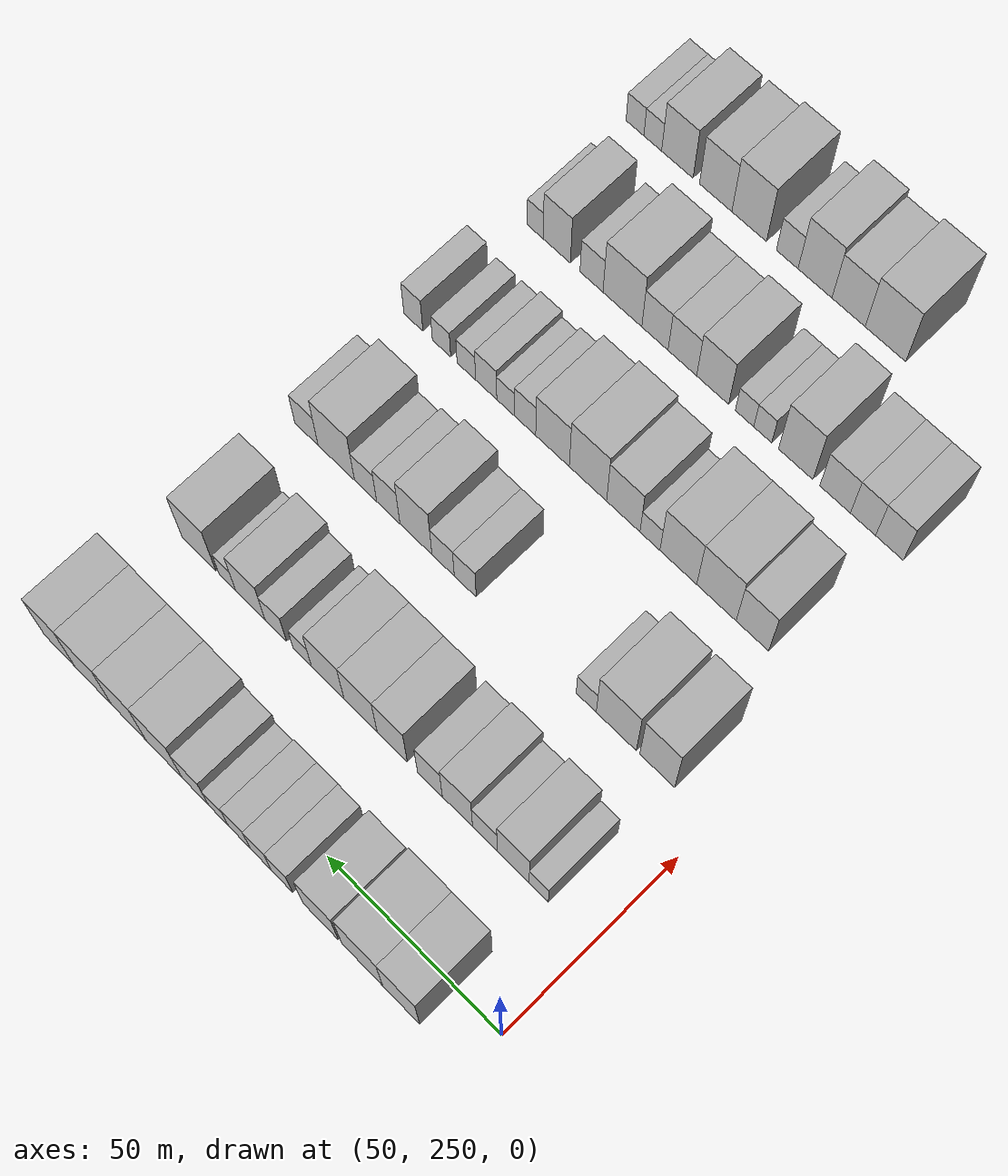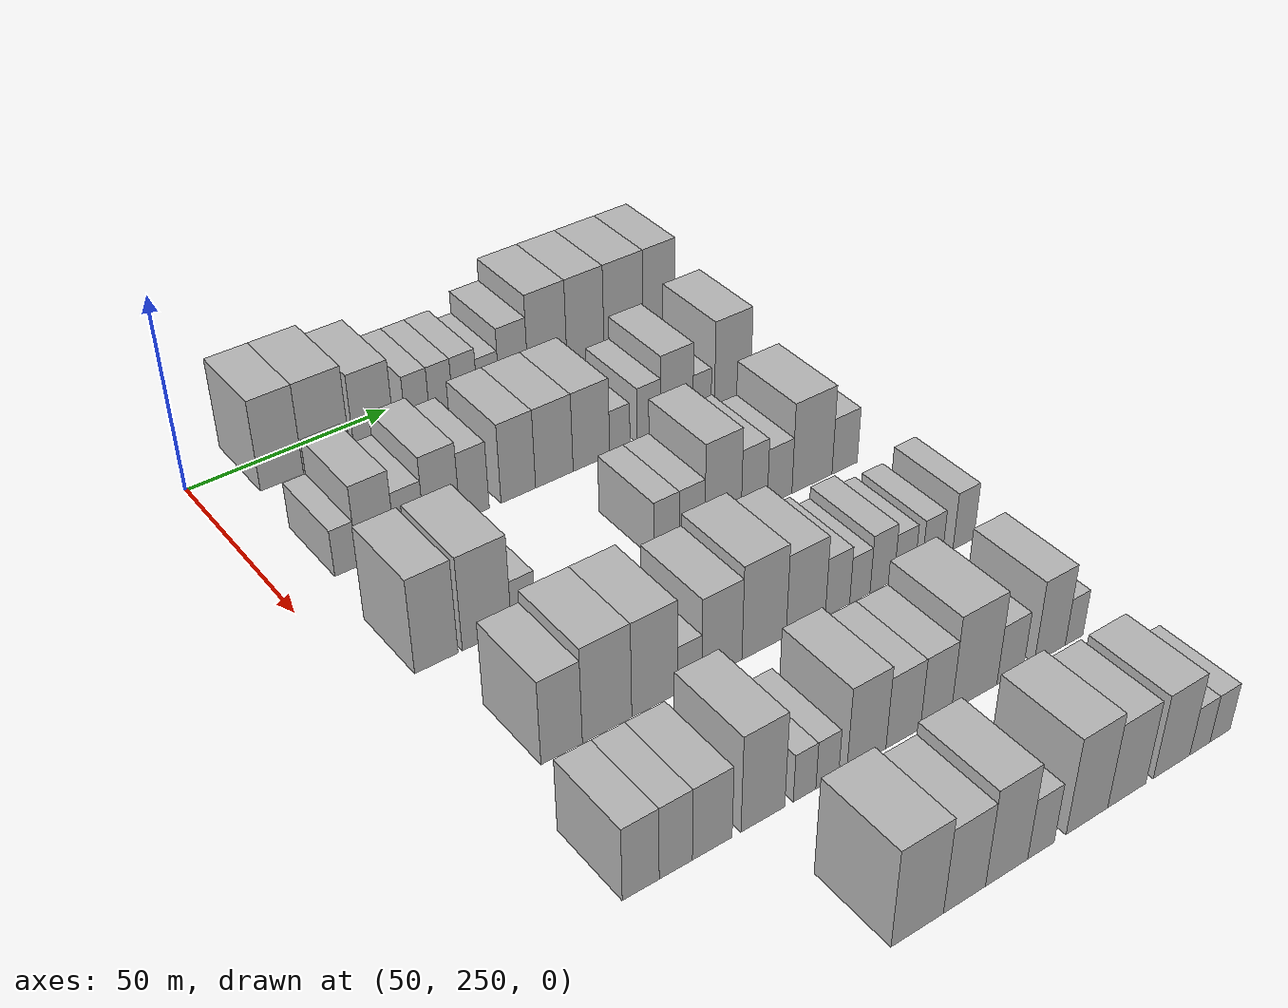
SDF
<sdf version="1.6">
 <world name="default">
  <model name="building_94">
   <static>1</static>
   <pose>50.0000 268.1801 0 0.000000 0.000000 0.000000</pose>
   <link name="link">
    <pose>0 0 12.00 0 0 0</pose>
    <collision name="collision"><geometry><box><size>20.0000 10.5638 24.0000</size></box></geometry></collision>
    <visual name="visual">
     <cast_shadows>0</cast_shadows>
     <geometry><box><size>20.0000 10.5638 24.0000</size></box></geometry>
     <material>
      <script>
       <uri>model://HANNAS_wall/materials/scripts</uri>
       <uri>model://HANNAS_wall/materials/textures</uri>
       <name>vrc/HANNAS_wall</name>
      </script>
     </material>
    </visual>
   </link>
  </model>
  <model name="building_95">
   <static>1</static>
   <pose>50.0000 279.3951 0 0.000000 0.000000 0.000000</pose>
   <link name="link">
    <pose>0 0 12.00 0 0 0</pose>
    <collision name="collision"><geometry><box><size>20.0000 11.8662 24.0000</size></box></geometry></collision>
    <visual name="visual">
     <cast_shadows>0</cast_shadows>
     <geometry><box><size>20.0000 11.8662 24.0000</size></box></geometry>
     <material>
      <script>
       <uri>model://HANNAS_wall/materials/scripts</uri>
       <uri>model://HANNAS_wall/materials/textures</uri>
       <name>vrc/HANNAS_wall</name>
      </script>
     </material>
    </visual>
   </link>
  </model>
  <model name="building_96">
   <static>1</static>
   <pose>50.0000 291.5180 0 0.000000 0.000000 0.000000</pose>
   <link name="link">
    <pose>0 0 10.50 0 0 0</pose>
    <collision name="collision"><geometry><box><size>20.0000 10.3795 21.0000</size></box></geometry></collision>
    <visual name="visual">
     <cast_shadows>0</cast_shadows>
     <geometry><box><size>20.0000 10.3795 21.0000</size></box></geometry>
     <material>
      <script>
       <uri>model://HANNAS_wall/materials/scripts</uri>
       <uri>model://HANNAS_wall/materials/textures</uri>
       <name>vrc/HANNAS_wall</name>
      </script>
     </material>
    </visual>
   </link>
  </model>
  <model name="building_97">
   <static>1</static>
   <pose>50.0000 302.8857 0 0.000000 0.000000 0.000000</pose>
   <link name="link">
    <pose>0 0 7.50 0 0 0</pose>
    <collision name="collision"><geometry><box><size>20.0000 6.3560 15.0000</size></box></geometry></collision>
    <visual name="visual">
     <cast_shadows>0</cast_shadows>
     <geometry><box><size>20.0000 6.3560 15.0000</size></box></geometry>
     <material>
      <script>
       <uri>model://HANNAS_wall/materials/scripts</uri>
       <uri>model://HANNAS_wall/materials/textures</uri>
       <name>vrc/HANNAS_wall</name>
      </script>
     </material>
    </visual>
   </link>
  </model>
  <model name="building_98">
   <static>1</static>
   <pose>50.0000 309.1673 0 0.000000 0.000000 0.000000</pose>
   <link name="link">
    <pose>0 0 7.50 0 0 0</pose>
    <collision name="collision"><geometry><box><size>20.0000 6.2071 15.0000</size></box></geometry></collision>
    <visual name="visual">
     <cast_shadows>0</cast_shadows>
     <geometry><box><size>20.0000 6.2071 15.0000</size></box></geometry>
     <material>
      <script>
       <uri>model://HANNAS_wall/materials/scripts</uri>
       <uri>model://HANNAS_wall/materials/textures</uri>
       <name>vrc/HANNAS_wall</name>
      </script>
     </material>
    </visual>
   </link>
  </model>
  <model name="building_99">
   <static>1</static>
   <pose>50.0000 315.5713 0 0.000000 0.000000 0.000000</pose>
   <link name="link">
    <pose>0 0 7.50 0 0 0</pose>
    <collision name="collision"><geometry><box><size>20.0000 6.6010 15.0000</size></box></geometry></collision>
    <visual name="visual">
     <cast_shadows>0</cast_shadows>
     <geometry><box><size>20.0000 6.6010 15.0000</size></box></geometry>
     <material>
      <script>
       <uri>model://HANNAS_wall/materials/scripts</uri>
       <uri>model://HANNAS_wall/materials/textures</uri>
       <name>vrc/HANNAS_wall</name>
      </script>
     </material>
    </visual>
   </link>
  </model>
  <model name="building_100">
   <static>1</static>
   <pose>50.0000 321.8636 0 0.000000 0.000000 0.000000</pose>
   <link name="link">
    <pose>0 0 6.00 0 0 0</pose>
    <collision name="collision"><geometry><box><size>20.0000 5.9836 12.0000</size></box></geometry></collision>
    <visual name="visual">
     <cast_shadows>0</cast_shadows>
     <geometry><box><size>20.0000 5.9836 12.0000</size></box></geometry>
     <material>
      <script>
       <uri>model://HANNAS_wall/materials/scripts</uri>
       <uri>model://HANNAS_wall/materials/textures</uri>
       <name>vrc/HANNAS_wall</name>
      </script>
     </material>
    </visual>
   </link>
  </model>
  <model name="building_101">
   <static>1</static>
   <pose>50.0000 328.8891 0 0.000000 0.000000 0.000000</pose>
   <link name="link">
    <pose>0 0 9.00 0 0 0</pose>
    <collision name="collision"><geometry><box><size>20.0000 8.0675 18.0000</size></box></geometry></collision>
    <visual name="visual">
     <cast_shadows>0</cast_shadows>
     <geometry><box><size>20.0000 8.0675 18.0000</size></box></geometry>
     <material>
      <script>
       <uri>model://HANNAS_wall/materials/scripts</uri>
       <uri>model://HANNAS_wall/materials/textures</uri>
       <name>vrc/HANNAS_wall</name>
      </script>
     </material>
    </visual>
   </link>
  </model>
  <model name="building_102">
   <static>1</static>
   <pose>50.0000 338.4605 0 0.000000 0.000000 0.000000</pose>
   <link name="link">
    <pose>0 0 12.00 0 0 0</pose>
    <collision name="collision"><geometry><box><size>20.0000 11.0752 24.0000</size></box></geometry></collision>
    <visual name="visual">
     <cast_shadows>0</cast_shadows>
     <geometry><box><size>20.0000 11.0752 24.0000</size></box></geometry>
     <material>
      <script>
       <uri>model://HANNAS_wall/materials/scripts</uri>
       <uri>model://HANNAS_wall/materials/textures</uri>
       <name>vrc/HANNAS_wall</name>
      </script>
     </material>
    </visual>
   </link>
  </model>
  <model name="building_103">
   <static>1</static>
   <pose>50.0000 349.4074 0 0.000000 0.000000 0.000000</pose>
   <link name="link">
    <pose>0 0 12.00 0 0 0</pose>
    <collision name="collision"><geometry><box><size>20.0000 10.8186 24.0000</size></box></geometry></collision>
    <visual name="visual">
     <cast_shadows>0</cast_shadows>
     <geometry><box><size>20.0000 10.8186 24.0000</size></box></geometry>
     <material>
      <script>
       <uri>model://HANNAS_wall/materials/scripts</uri>
       <uri>model://HANNAS_wall/materials/textures</uri>
       <name>vrc/HANNAS_wall</name>
      </script>
     </material>
    </visual>
   </link>
  </model>
  <model name="building_104">
   <static>1</static>
   <pose>50.0000 360.6221 0 0.000000 0.000000 0.000000</pose>
   <link name="link">
    <pose>0 0 12.00 0 0 0</pose>
    <collision name="collision"><geometry><box><size>20.0000 11.6109 24.0000</size></box></geometry></collision>
    <visual name="visual">
     <cast_shadows>0</cast_shadows>
     <geometry><box><size>20.0000 11.6109 24.0000</size></box></geometry>
     <material>
      <script>
       <uri>model://HANNAS_wall/materials/scripts</uri>
       <uri>model://HANNAS_wall/materials/textures</uri>
       <name>vrc/HANNAS_wall</name>
      </script>
     </material>
    </visual>
   </link>
  </model>
  <model name="building_105">
   <static>1</static>
   <pose>50.0000 371.2698 0 0.000000 0.000000 0.000000</pose>
   <link name="link">
    <pose>0 0 12.00 0 0 0</pose>
    <collision name="collision"><geometry><box><size>20.0000 9.6844 24.0000</size></box></geometry></collision>
    <visual name="visual">
     <cast_shadows>0</cast_shadows>
     <geometry><box><size>20.0000 9.6844 24.0000</size></box></geometry>
     <material>
      <script>
       <uri>model://HANNAS_wall/materials/scripts</uri>
       <uri>model://HANNAS_wall/materials/textures</uri>
       <name>vrc/HANNAS_wall</name>
      </script>
     </material>
    </visual>
   </link>
  </model>
  <model name="building_229">
   <static>1</static>
   <pose>85.0000 264.8068 0 0.000000 0.000000 0.000000</pose>
   <link name="link">
    <pose>0 0 6.00 0 0 0</pose>
    <collision name="collision"><geometry><box><size>20.0000 5.4255 12.0000</size></box></geometry></collision>
    <visual name="visual">
     <cast_shadows>0</cast_shadows>
     <geometry><box><size>20.0000 5.4255 12.0000</size></box></geometry>
     <material>
      <script>
       <uri>model://HANNAS_wall/materials/scripts</uri>
       <uri>model://HANNAS_wall/materials/textures</uri>
       <name>vrc/HANNAS_wall</name>
      </script>
     </material>
    </visual>
   </link>
  </model>
  <model name="building_230">
   <static>1</static>
   <pose>85.0000 272.0578 0 0.000000 0.000000 0.000000</pose>
   <link name="link">
    <pose>0 0 10.50 0 0 0</pose>
    <collision name="collision"><geometry><box><size>20.0000 9.0766 21.0000</size></box></geometry></collision>
    <visual name="visual">
     <cast_shadows>0</cast_shadows>
     <geometry><box><size>20.0000 9.0766 21.0000</size></box></geometry>
     <material>
      <script>
       <uri>model://HANNAS_wall/materials/scripts</uri>
       <uri>model://HANNAS_wall/materials/textures</uri>
       <name>vrc/HANNAS_wall</name>
      </script>
     </material>
    </visual>
   </link>
  </model>
  <model name="building_231">
   <static>1</static>
   <pose>85.0000 280.1842 0 0.000000 0.000000 0.000000</pose>
   <link name="link">
    <pose>0 0 7.50 0 0 0</pose>
    <collision name="collision"><geometry><box><size>20.0000 7.1763 15.0000</size></box></geometry></collision>
    <visual name="visual">
     <cast_shadows>0</cast_shadows>
     <geometry><box><size>20.0000 7.1763 15.0000</size></box></geometry>
     <material>
      <script>
       <uri>model://HANNAS_wall/materials/scripts</uri>
       <uri>model://HANNAS_wall/materials/textures</uri>
       <name>vrc/HANNAS_wall</name>
      </script>
     </material>
    </visual>
   </link>
  </model>
  <model name="building_232">
   <static>1</static>
   <pose>85.0000 288.1798 0 0.000000 0.000000 0.000000</pose>
   <link name="link">
    <pose>0 0 10.50 0 0 0</pose>
    <collision name="collision"><geometry><box><size>20.0000 8.8149 21.0000</size></box></geometry></collision>
    <visual name="visual">
     <cast_shadows>0</cast_shadows>
     <geometry><box><size>20.0000 8.8149 21.0000</size></box></geometry>
     <material>
      <script>
       <uri>model://HANNAS_wall/materials/scripts</uri>
       <uri>model://HANNAS_wall/materials/textures</uri>
       <name>vrc/HANNAS_wall</name>
      </script>
     </material>
    </visual>
   </link>
  </model>
  <model name="building_233">
   <static>1</static>
   <pose>85.0000 296.2367 0 0.000000 0.000000 0.000000</pose>
   <link name="link">
    <pose>0 0 9.00 0 0 0</pose>
    <collision name="collision"><geometry><box><size>20.0000 7.2990 18.0000</size></box></geometry></collision>
    <visual name="visual">
     <cast_shadows>0</cast_shadows>
     <geometry><box><size>20.0000 7.2990 18.0000</size></box></geometry>
     <material>
      <script>
       <uri>model://HANNAS_wall/materials/scripts</uri>
       <uri>model://HANNAS_wall/materials/textures</uri>
       <name>vrc/HANNAS_wall</name>
      </script>
     </material>
    </visual>
   </link>
  </model>
  <model name="building_234">
   <static>1</static>
   <pose>85.0000 307.3786 0 0.000000 0.000000 0.000000</pose>
   <link name="link">
    <pose>0 0 10.50 0 0 0</pose>
    <collision name="collision"><geometry><box><size>20.0000 8.9848 21.0000</size></box></geometry></collision>
    <visual name="visual">
     <cast_shadows>0</cast_shadows>
     <geometry><box><size>20.0000 8.9848 21.0000</size></box></geometry>
     <material>
      <script>
       <uri>model://HANNAS_wall/materials/scripts</uri>
       <uri>model://HANNAS_wall/materials/textures</uri>
       <name>vrc/HANNAS_wall</name>
      </script>
     </material>
    </visual>
   </link>
  </model>
  <model name="building_235">
   <static>1</static>
   <pose>85.0000 316.8578 0 0.000000 0.000000 0.000000</pose>
   <link name="link">
    <pose>0 0 10.50 0 0 0</pose>
    <collision name="collision"><geometry><box><size>20.0000 9.9737 21.0000</size></box></geometry></collision>
    <visual name="visual">
     <cast_shadows>0</cast_shadows>
     <geometry><box><size>20.0000 9.9737 21.0000</size></box></geometry>
     <material>
      <script>
       <uri>model://HANNAS_wall/materials/scripts</uri>
       <uri>model://HANNAS_wall/materials/textures</uri>
       <name>vrc/HANNAS_wall</name>
      </script>
     </material>
    </visual>
   </link>
  </model>
  <model name="building_236">
   <static>1</static>
   <pose>85.0000 326.8072 0 0.000000 0.000000 0.000000</pose>
   <link name="link">
    <pose>0 0 10.50 0 0 0</pose>
    <collision name="collision"><geometry><box><size>20.0000 9.9249 21.0000</size></box></geometry></collision>
    <visual name="visual">
     <cast_shadows>0</cast_shadows>
     <geometry><box><size>20.0000 9.9249 21.0000</size></box></geometry>
     <material>
      <script>
       <uri>model://HANNAS_wall/materials/scripts</uri>
       <uri>model://HANNAS_wall/materials/textures</uri>
       <name>vrc/HANNAS_wall</name>
      </script>
     </material>
    </visual>
   </link>
  </model>
  <model name="building_237">
   <static>1</static>
   <pose>85.0000 334.5676 0 0.000000 0.000000 0.000000</pose>
   <link name="link">
    <pose>0 0 6.00 0 0 0</pose>
    <collision name="collision"><geometry><box><size>20.0000 5.5959 12.0000</size></box></geometry></collision>
    <visual name="visual">
     <cast_shadows>0</cast_shadows>
     <geometry><box><size>20.0000 5.5959 12.0000</size></box></geometry>
     <material>
      <script>
       <uri>model://HANNAS_wall/materials/scripts</uri>
       <uri>model://HANNAS_wall/materials/textures</uri>
       <name>vrc/HANNAS_wall</name>
      </script>
     </material>
    </visual>
   </link>
  </model>
  <model name="building_238">
   <static>1</static>
   <pose>85.0000 342.6664 0 0.000000 0.000000 0.000000</pose>
   <link name="link">
    <pose>0 0 7.50 0 0 0</pose>
    <collision name="collision"><geometry><box><size>20.0000 6.6018 15.0000</size></box></geometry></collision>
    <visual name="visual">
     <cast_shadows>0</cast_shadows>
     <geometry><box><size>20.0000 6.6018 15.0000</size></box></geometry>
     <material>
      <script>
       <uri>model://HANNAS_wall/materials/scripts</uri>
       <uri>model://HANNAS_wall/materials/textures</uri>
       <name>vrc/HANNAS_wall</name>
      </script>
     </material>
    </visual>
   </link>
  </model>
  <model name="building_239">
   <static>1</static>
   <pose>85.0000 350.5642 0 0.000000 0.000000 0.000000</pose>
   <link name="link">
    <pose>0 0 10.50 0 0 0</pose>
    <collision name="collision"><geometry><box><size>20.0000 9.1936 21.0000</size></box></geometry></collision>
    <visual name="visual">
     <cast_shadows>0</cast_shadows>
     <geometry><box><size>20.0000 9.1936 21.0000</size></box></geometry>
     <material>
      <script>
       <uri>model://HANNAS_wall/materials/scripts</uri>
       <uri>model://HANNAS_wall/materials/textures</uri>
       <name>vrc/HANNAS_wall</name>
      </script>
     </material>
    </visual>
   </link>
  </model>
  <model name="building_240">
   <static>1</static>
   <pose>85.0000 357.7751 0 0.000000 0.000000 0.000000</pose>
   <link name="link">
    <pose>0 0 6.00 0 0 0</pose>
    <collision name="collision"><geometry><box><size>20.0000 5.2282 12.0000</size></box></geometry></collision>
    <visual name="visual">
     <cast_shadows>0</cast_shadows>
     <geometry><box><size>20.0000 5.2282 12.0000</size></box></geometry>
     <material>
      <script>
       <uri>model://HANNAS_wall/materials/scripts</uri>
       <uri>model://HANNAS_wall/materials/textures</uri>
       <name>vrc/HANNAS_wall</name>
      </script>
     </material>
    </visual>
   </link>
  </model>
  <model name="building_241">
   <static>1</static>
   <pose>85.0000 366.7127 0 0.000000 0.000000 0.000000</pose>
   <link name="link">
    <pose>0 0 12.00 0 0 0</pose>
    <collision name="collision"><geometry><box><size>20.0000 10.6471 24.0000</size></box></geometry></collision>
    <visual name="visual">
     <cast_shadows>0</cast_shadows>
     <geometry><box><size>20.0000 10.6471 24.0000</size></box></geometry>
     <material>
      <script>
       <uri>model://HANNAS_wall/materials/scripts</uri>
       <uri>model://HANNAS_wall/materials/textures</uri>
       <name>vrc/HANNAS_wall</name>
      </script>
     </material>
    </visual>
   </link>
  </model>
  <model name="building_359">
   <static>1</static>
   <pose>120.0000 265.4351 0 0.000000 0.000000 0.000000</pose>
   <link name="link">
    <pose>0 0 12.00 0 0 0</pose>
    <collision name="collision"><geometry><box><size>20.0000 9.9154 24.0000</size></box></geometry></collision>
    <visual name="visual">
     <cast_shadows>0</cast_shadows>
     <geometry><box><size>20.0000 9.9154 24.0000</size></box></geometry>
     <material>
      <script>
       <uri>model://HANNAS_wall/materials/scripts</uri>
       <uri>model://HANNAS_wall/materials/textures</uri>
       <name>vrc/HANNAS_wall</name>
      </script>
     </material>
    </visual>
   </link>
  </model>
  <model name="building_360">
   <static>1</static>
   <pose>120.0000 277.1660 0 0.000000 0.000000 0.000000</pose>
   <link name="link">
    <pose>0 0 12.00 0 0 0</pose>
    <collision name="collision"><geometry><box><size>20.0000 11.5463 24.0000</size></box></geometry></collision>
    <visual name="visual">
     <cast_shadows>0</cast_shadows>
     <geometry><box><size>20.0000 11.5463 24.0000</size></box></geometry>
     <material>
      <script>
       <uri>model://HANNAS_wall/materials/scripts</uri>
       <uri>model://HANNAS_wall/materials/textures</uri>
       <name>vrc/HANNAS_wall</name>
      </script>
     </material>
    </visual>
   </link>
  </model>
  <model name="building_361">
   <static>1</static>
   <pose>120.0000 285.8465 0 0.000000 0.000000 0.000000</pose>
   <link name="link">
    <pose>0 0 6.00 0 0 0</pose>
    <collision name="collision"><geometry><box><size>20.0000 5.8147 12.0000</size></box></geometry></collision>
    <visual name="visual">
     <cast_shadows>0</cast_shadows>
     <geometry><box><size>20.0000 5.8147 12.0000</size></box></geometry>
     <material>
      <script>
       <uri>model://HANNAS_wall/materials/scripts</uri>
       <uri>model://HANNAS_wall/materials/textures</uri>
       <name>vrc/HANNAS_wall</name>
      </script>
     </material>
    </visual>
   </link>
  </model>
  <model name="building_362">
   <static>1</static>
   <pose>120.0000 321.6800 0 0.000000 0.000000 0.000000</pose>
   <link name="link">
    <pose>0 0 7.50 0 0 0</pose>
    <collision name="collision"><geometry><box><size>20.0000 6.6174 15.0000</size></box></geometry></collision>
    <visual name="visual">
     <cast_shadows>0</cast_shadows>
     <geometry><box><size>20.0000 6.6174 15.0000</size></box></geometry>
     <material>
      <script>
       <uri>model://HANNAS_wall/materials/scripts</uri>
       <uri>model://HANNAS_wall/materials/textures</uri>
       <name>vrc/HANNAS_wall</name>
      </script>
     </material>
    </visual>
   </link>
  </model>
  <model name="building_363">
   <static>1</static>
   <pose>120.0000 328.3863 0 0.000000 0.000000 0.000000</pose>
   <link name="link">
    <pose>0 0 7.50 0 0 0</pose>
    <collision name="collision"><geometry><box><size>20.0000 6.7952 15.0000</size></box></geometry></collision>
    <visual name="visual">
     <cast_shadows>0</cast_shadows>
     <geometry><box><size>20.0000 6.7952 15.0000</size></box></geometry>
     <material>
      <script>
       <uri>model://HANNAS_wall/materials/scripts</uri>
       <uri>model://HANNAS_wall/materials/textures</uri>
       <name>vrc/HANNAS_wall</name>
      </script>
     </material>
    </visual>
   </link>
  </model>
  <model name="building_364">
   <static>1</static>
   <pose>120.0000 336.6906 0 0.000000 0.000000 0.000000</pose>
   <link name="link">
    <pose>0 0 12.00 0 0 0</pose>
    <collision name="collision"><geometry><box><size>20.0000 9.8136 24.0000</size></box></geometry></collision>
    <visual name="visual">
     <cast_shadows>0</cast_shadows>
     <geometry><box><size>20.0000 9.8136 24.0000</size></box></geometry>
     <material>
      <script>
       <uri>model://HANNAS_wall/materials/scripts</uri>
       <uri>model://HANNAS_wall/materials/textures</uri>
       <name>vrc/HANNAS_wall</name>
      </script>
     </material>
    </visual>
   </link>
  </model>
  <model name="building_365">
   <static>1</static>
   <pose>120.0000 345.2010 0 0.000000 0.000000 0.000000</pose>
   <link name="link">
    <pose>0 0 9.00 0 0 0</pose>
    <collision name="collision"><geometry><box><size>20.0000 7.2072 18.0000</size></box></geometry></collision>
    <visual name="visual">
     <cast_shadows>0</cast_shadows>
     <geometry><box><size>20.0000 7.2072 18.0000</size></box></geometry>
     <material>
      <script>
       <uri>model://HANNAS_wall/materials/scripts</uri>
       <uri>model://HANNAS_wall/materials/textures</uri>
       <name>vrc/HANNAS_wall</name>
      </script>
     </material>
    </visual>
   </link>
  </model>
  <model name="building_366">
   <static>1</static>
   <pose>120.0000 352.2693 0 0.000000 0.000000 0.000000</pose>
   <link name="link">
    <pose>0 0 7.50 0 0 0</pose>
    <collision name="collision"><geometry><box><size>20.0000 6.9295 15.0000</size></box></geometry></collision>
    <visual name="visual">
     <cast_shadows>0</cast_shadows>
     <geometry><box><size>20.0000 6.9295 15.0000</size></box></geometry>
     <material>
      <script>
       <uri>model://HANNAS_wall/materials/scripts</uri>
       <uri>model://HANNAS_wall/materials/textures</uri>
       <name>vrc/HANNAS_wall</name>
      </script>
     </material>
    </visual>
   </link>
  </model>
  <model name="building_367">
   <static>1</static>
   <pose>120.0000 361.4770 0 0.000000 0.000000 0.000000</pose>
   <link name="link">
    <pose>0 0 12.00 0 0 0</pose>
    <collision name="collision"><geometry><box><size>20.0000 11.4859 24.0000</size></box></geometry></collision>
    <visual name="visual">
     <cast_shadows>0</cast_shadows>
     <geometry><box><size>20.0000 11.4859 24.0000</size></box></geometry>
     <material>
      <script>
       <uri>model://HANNAS_wall/materials/scripts</uri>
       <uri>model://HANNAS_wall/materials/textures</uri>
       <name>vrc/HANNAS_wall</name>
      </script>
     </material>
    </visual>
   </link>
  </model>
  <model name="building_368">
   <static>1</static>
   <pose>120.0000 370.9078 0 0.000000 0.000000 0.000000</pose>
   <link name="link">
    <pose>0 0 7.50 0 0 0</pose>
    <collision name="collision"><geometry><box><size>20.0000 7.3756 15.0000</size></box></geometry></collision>
    <visual name="visual">
     <cast_shadows>0</cast_shadows>
     <geometry><box><size>20.0000 7.3756 15.0000</size></box></geometry>
     <material>
      <script>
       <uri>model://HANNAS_wall/materials/scripts</uri>
       <uri>model://HANNAS_wall/materials/textures</uri>
       <name>vrc/HANNAS_wall</name>
      </script>
     </material>
    </visual>
   </link>
  </model>
  <model name="building_483">
   <static>1</static>
   <pose>155.0000 271.4396 0 0.000000 0.000000 0.000000</pose>
   <link name="link">
    <pose>0 0 10.50 0 0 0</pose>
    <collision name="collision"><geometry><box><size>20.0000 9.3198 21.0000</size></box></geometry></collision>
    <visual name="visual">
     <cast_shadows>0</cast_shadows>
     <geometry><box><size>20.0000 9.3198 21.0000</size></box></geometry>
     <material>
      <script>
       <uri>model://HANNAS_wall/materials/scripts</uri>
       <uri>model://HANNAS_wall/materials/textures</uri>
       <name>vrc/HANNAS_wall</name>
      </script>
     </material>
    </visual>
   </link>
  </model>
  <model name="building_484">
   <static>1</static>
   <pose>155.0000 281.8023 0 0.000000 0.000000 0.000000</pose>
   <link name="link">
    <pose>0 0 12.00 0 0 0</pose>
    <collision name="collision"><geometry><box><size>20.0000 11.4057 24.0000</size></box></geometry></collision>
    <visual name="visual">
     <cast_shadows>0</cast_shadows>
     <geometry><box><size>20.0000 11.4057 24.0000</size></box></geometry>
     <material>
      <script>
       <uri>model://HANNAS_wall/materials/scripts</uri>
       <uri>model://HANNAS_wall/materials/textures</uri>
       <name>vrc/HANNAS_wall</name>
      </script>
     </material>
    </visual>
   </link>
  </model>
  <model name="building_485">
   <static>1</static>
   <pose>155.0000 292.9017 0 0.000000 0.000000 0.000000</pose>
   <link name="link">
    <pose>0 0 12.00 0 0 0</pose>
    <collision name="collision"><geometry><box><size>20.0000 10.7931 24.0000</size></box></geometry></collision>
    <visual name="visual">
     <cast_shadows>0</cast_shadows>
     <geometry><box><size>20.0000 10.7931 24.0000</size></box></geometry>
     <material>
      <script>
       <uri>model://HANNAS_wall/materials/scripts</uri>
       <uri>model://HANNAS_wall/materials/textures</uri>
       <name>vrc/HANNAS_wall</name>
      </script>
     </material>
    </visual>
   </link>
  </model>
  <model name="building_486">
   <static>1</static>
   <pose>155.0000 301.2551 0 0.000000 0.000000 0.000000</pose>
   <link name="link">
    <pose>0 0 6.00 0 0 0</pose>
    <collision name="collision"><geometry><box><size>20.0000 5.9136 12.0000</size></box></geometry></collision>
    <visual name="visual">
     <cast_shadows>0</cast_shadows>
     <geometry><box><size>20.0000 5.9136 12.0000</size></box></geometry>
     <material>
      <script>
       <uri>model://HANNAS_wall/materials/scripts</uri>
       <uri>model://HANNAS_wall/materials/textures</uri>
       <name>vrc/HANNAS_wall</name>
      </script>
     </material>
    </visual>
   </link>
  </model>
  <model name="building_487">
   <static>1</static>
   <pose>155.0000 309.1810 0 0.000000 0.000000 0.000000</pose>
   <link name="link">
    <pose>0 0 10.50 0 0 0</pose>
    <collision name="collision"><geometry><box><size>20.0000 9.9382 21.0000</size></box></geometry></collision>
    <visual name="visual">
     <cast_shadows>0</cast_shadows>
     <geometry><box><size>20.0000 9.9382 21.0000</size></box></geometry>
     <material>
      <script>
       <uri>model://HANNAS_wall/materials/scripts</uri>
       <uri>model://HANNAS_wall/materials/textures</uri>
       <name>vrc/HANNAS_wall</name>
      </script>
     </material>
    </visual>
   </link>
  </model>
  <model name="building_488">
   <static>1</static>
   <pose>155.0000 319.7690 0 0.000000 0.000000 0.000000</pose>
   <link name="link">
    <pose>0 0 12.00 0 0 0</pose>
    <collision name="collision"><geometry><box><size>20.0000 11.2379 24.0000</size></box></geometry></collision>
    <visual name="visual">
     <cast_shadows>0</cast_shadows>
     <geometry><box><size>20.0000 11.2379 24.0000</size></box></geometry>
     <material>
      <script>
       <uri>model://HANNAS_wall/materials/scripts</uri>
       <uri>model://HANNAS_wall/materials/textures</uri>
       <name>vrc/HANNAS_wall</name>
      </script>
     </material>
    </visual>
   </link>
  </model>
  <model name="building_489">
   <static>1</static>
   <pose>155.0000 330.5083 0 0.000000 0.000000 0.000000</pose>
   <link name="link">
    <pose>0 0 10.50 0 0 0</pose>
    <collision name="collision"><geometry><box><size>20.0000 10.2406 21.0000</size></box></geometry></collision>
    <visual name="visual">
     <cast_shadows>0</cast_shadows>
     <geometry><box><size>20.0000 10.2406 21.0000</size></box></geometry>
     <material>
      <script>
       <uri>model://HANNAS_wall/materials/scripts</uri>
       <uri>model://HANNAS_wall/materials/textures</uri>
       <name>vrc/HANNAS_wall</name>
      </script>
     </material>
    </visual>
   </link>
  </model>
  <model name="building_490">
   <static>1</static>
   <pose>155.0000 338.8722 0 0.000000 0.000000 0.000000</pose>
   <link name="link">
    <pose>0 0 7.50 0 0 0</pose>
    <collision name="collision"><geometry><box><size>20.0000 6.4873 15.0000</size></box></geometry></collision>
    <visual name="visual">
     <cast_shadows>0</cast_shadows>
     <geometry><box><size>20.0000 6.4873 15.0000</size></box></geometry>
     <material>
      <script>
       <uri>model://HANNAS_wall/materials/scripts</uri>
       <uri>model://HANNAS_wall/materials/textures</uri>
       <name>vrc/HANNAS_wall</name>
      </script>
     </material>
    </visual>
   </link>
  </model>
  <model name="building_491">
   <static>1</static>
   <pose>155.0000 344.8646 0 0.000000 0.000000 0.000000</pose>
   <link name="link">
    <pose>0 0 6.00 0 0 0</pose>
    <collision name="collision"><geometry><box><size>20.0000 5.4974 12.0000</size></box></geometry></collision>
    <visual name="visual">
     <cast_shadows>0</cast_shadows>
     <geometry><box><size>20.0000 5.4974 12.0000</size></box></geometry>
     <material>
      <script>
       <uri>model://HANNAS_wall/materials/scripts</uri>
       <uri>model://HANNAS_wall/materials/textures</uri>
       <name>vrc/HANNAS_wall</name>
      </script>
     </material>
    </visual>
   </link>
  </model>
  <model name="building_492">
   <static>1</static>
   <pose>155.0000 350.9099 0 0.000000 0.000000 0.000000</pose>
   <link name="link">
    <pose>0 0 7.50 0 0 0</pose>
    <collision name="collision"><geometry><box><size>20.0000 6.5932 15.0000</size></box></geometry></collision>
    <visual name="visual">
     <cast_shadows>0</cast_shadows>
     <geometry><box><size>20.0000 6.5932 15.0000</size></box></geometry>
     <material>
      <script>
       <uri>model://HANNAS_wall/materials/scripts</uri>
       <uri>model://HANNAS_wall/materials/textures</uri>
       <name>vrc/HANNAS_wall</name>
      </script>
     </material>
    </visual>
   </link>
  </model>
  <model name="building_493">
   <static>1</static>
   <pose>155.0000 357.1051 0 0.000000 0.000000 0.000000</pose>
   <link name="link">
    <pose>0 0 6.00 0 0 0</pose>
    <collision name="collision"><geometry><box><size>20.0000 5.7971 12.0000</size></box></geometry></collision>
    <visual name="visual">
     <cast_shadows>0</cast_shadows>
     <geometry><box><size>20.0000 5.7971 12.0000</size></box></geometry>
     <material>
      <script>
       <uri>model://HANNAS_wall/materials/scripts</uri>
       <uri>model://HANNAS_wall/materials/textures</uri>
       <name>vrc/HANNAS_wall</name>
      </script>
     </material>
    </visual>
   </link>
  </model>
  <model name="building_494">
   <static>1</static>
   <pose>155.0000 364.9032 0 0.000000 0.000000 0.000000</pose>
   <link name="link">
    <pose>0 0 6.00 0 0 0</pose>
    <collision name="collision"><geometry><box><size>20.0000 5.7991 12.0000</size></box></geometry></collision>
    <visual name="visual">
     <cast_shadows>0</cast_shadows>
     <geometry><box><size>20.0000 5.7991 12.0000</size></box></geometry>
     <material>
      <script>
       <uri>model://HANNAS_wall/materials/scripts</uri>
       <uri>model://HANNAS_wall/materials/textures</uri>
       <name>vrc/HANNAS_wall</name>
      </script>
     </material>
    </visual>
   </link>
  </model>
  <model name="building_495">
   <static>1</static>
   <pose>155.0000 373.8268 0 0.000000 0.000000 0.000000</pose>
   <link name="link">
    <pose>0 0 7.50 0 0 0</pose>
    <collision name="collision"><geometry><box><size>20.0000 6.0481 15.0000</size></box></geometry></collision>
    <visual name="visual">
     <cast_shadows>0</cast_shadows>
     <geometry><box><size>20.0000 6.0481 15.0000</size></box></geometry>
     <material>
      <script>
       <uri>model://HANNAS_wall/materials/scripts</uri>
       <uri>model://HANNAS_wall/materials/textures</uri>
       <name>vrc/HANNAS_wall</name>
      </script>
     </material>
    </visual>
   </link>
  </model>
  <model name="building_612">
   <static>1</static>
   <pose>190.0000 264.2466 0 0.000000 0.000000 0.000000</pose>
   <link name="link">
    <pose>0 0 9.00 0 0 0</pose>
    <collision name="collision"><geometry><box><size>20.0000 7.8962 18.0000</size></box></geometry></collision>
    <visual name="visual">
     <cast_shadows>0</cast_shadows>
     <geometry><box><size>20.0000 7.8962 18.0000</size></box></geometry>
     <material>
      <script>
       <uri>model://HANNAS_wall/materials/scripts</uri>
       <uri>model://HANNAS_wall/materials/textures</uri>
       <name>vrc/HANNAS_wall</name>
      </script>
     </material>
    </visual>
   </link>
  </model>
  <model name="building_613">
   <static>1</static>
   <pose>190.0000 271.8108 0 0.000000 0.000000 0.000000</pose>
   <link name="link">
    <pose>0 0 9.00 0 0 0</pose>
    <collision name="collision"><geometry><box><size>20.0000 7.2321 18.0000</size></box></geometry></collision>
    <visual name="visual">
     <cast_shadows>0</cast_shadows>
     <geometry><box><size>20.0000 7.2321 18.0000</size></box></geometry>
     <material>
      <script>
       <uri>model://HANNAS_wall/materials/scripts</uri>
       <uri>model://HANNAS_wall/materials/textures</uri>
       <name>vrc/HANNAS_wall</name>
      </script>
     </material>
    </visual>
   </link>
  </model>
  <model name="building_614">
   <static>1</static>
   <pose>190.0000 279.8575 0 0.000000 0.000000 0.000000</pose>
   <link name="link">
    <pose>0 0 9.00 0 0 0</pose>
    <collision name="collision"><geometry><box><size>20.0000 8.8612 18.0000</size></box></geometry></collision>
    <visual name="visual">
     <cast_shadows>0</cast_shadows>
     <geometry><box><size>20.0000 8.8612 18.0000</size></box></geometry>
     <material>
      <script>
       <uri>model://HANNAS_wall/materials/scripts</uri>
       <uri>model://HANNAS_wall/materials/textures</uri>
       <name>vrc/HANNAS_wall</name>
      </script>
     </material>
    </visual>
   </link>
  </model>
  <model name="building_615">
   <static>1</static>
   <pose>190.0000 291.3267 0 0.000000 0.000000 0.000000</pose>
   <link name="link">
    <pose>0 0 12.00 0 0 0</pose>
    <collision name="collision"><geometry><box><size>20.0000 10.0772 24.0000</size></box></geometry></collision>
    <visual name="visual">
     <cast_shadows>0</cast_shadows>
     <geometry><box><size>20.0000 10.0772 24.0000</size></box></geometry>
     <material>
      <script>
       <uri>model://HANNAS_wall/materials/scripts</uri>
       <uri>model://HANNAS_wall/materials/textures</uri>
       <name>vrc/HANNAS_wall</name>
      </script>
     </material>
    </visual>
   </link>
  </model>
  <model name="building_616">
   <static>1</static>
   <pose>190.0000 301.0333 0 0.000000 0.000000 0.000000</pose>
   <link name="link">
    <pose>0 0 6.00 0 0 0</pose>
    <collision name="collision"><geometry><box><size>20.0000 5.3360 12.0000</size></box></geometry></collision>
    <visual name="visual">
     <cast_shadows>0</cast_shadows>
     <geometry><box><size>20.0000 5.3360 12.0000</size></box></geometry>
     <material>
      <script>
       <uri>model://HANNAS_wall/materials/scripts</uri>
       <uri>model://HANNAS_wall/materials/textures</uri>
       <name>vrc/HANNAS_wall</name>
      </script>
     </material>
    </visual>
   </link>
  </model>
  <model name="building_617">
   <static>1</static>
   <pose>190.0000 306.4295 0 0.000000 0.000000 0.000000</pose>
   <link name="link">
    <pose>0 0 6.00 0 0 0</pose>
    <collision name="collision"><geometry><box><size>20.0000 5.4562 12.0000</size></box></geometry></collision>
    <visual name="visual">
     <cast_shadows>0</cast_shadows>
     <geometry><box><size>20.0000 5.4562 12.0000</size></box></geometry>
     <material>
      <script>
       <uri>model://HANNAS_wall/materials/scripts</uri>
       <uri>model://HANNAS_wall/materials/textures</uri>
       <name>vrc/HANNAS_wall</name>
      </script>
     </material>
    </visual>
   </link>
  </model>
  <model name="building_618">
   <static>1</static>
   <pose>190.0000 315.9666 0 0.000000 0.000000 0.000000</pose>
   <link name="link">
    <pose>0 0 10.50 0 0 0</pose>
    <collision name="collision"><geometry><box><size>20.0000 9.6181 21.0000</size></box></geometry></collision>
    <visual name="visual">
     <cast_shadows>0</cast_shadows>
     <geometry><box><size>20.0000 9.6181 21.0000</size></box></geometry>
     <material>
      <script>
       <uri>model://HANNAS_wall/materials/scripts</uri>
       <uri>model://HANNAS_wall/materials/textures</uri>
       <name>vrc/HANNAS_wall</name>
      </script>
     </material>
    </visual>
   </link>
  </model>
  <model name="building_619">
   <static>1</static>
   <pose>190.0000 325.1144 0 0.000000 0.000000 0.000000</pose>
   <link name="link">
    <pose>0 0 9.00 0 0 0</pose>
    <collision name="collision"><geometry><box><size>20.0000 8.6774 18.0000</size></box></geometry></collision>
    <visual name="visual">
     <cast_shadows>0</cast_shadows>
     <geometry><box><size>20.0000 8.6774 18.0000</size></box></geometry>
     <material>
      <script>
       <uri>model://HANNAS_wall/materials/scripts</uri>
       <uri>model://HANNAS_wall/materials/textures</uri>
       <name>vrc/HANNAS_wall</name>
      </script>
     </material>
    </visual>
   </link>
  </model>
  <model name="building_620">
   <static>1</static>
   <pose>190.0000 333.4660 0 0.000000 0.000000 0.000000</pose>
   <link name="link">
    <pose>0 0 9.00 0 0 0</pose>
    <collision name="collision"><geometry><box><size>20.0000 8.0259 18.0000</size></box></geometry></collision>
    <visual name="visual">
     <cast_shadows>0</cast_shadows>
     <geometry><box><size>20.0000 8.0259 18.0000</size></box></geometry>
     <material>
      <script>
       <uri>model://HANNAS_wall/materials/scripts</uri>
       <uri>model://HANNAS_wall/materials/textures</uri>
       <name>vrc/HANNAS_wall</name>
      </script>
     </material>
    </visual>
   </link>
  </model>
  <model name="building_621">
   <static>1</static>
   <pose>190.0000 343.4694 0 0.000000 0.000000 0.000000</pose>
   <link name="link">
    <pose>0 0 12.00 0 0 0</pose>
    <collision name="collision"><geometry><box><size>20.0000 11.9810 24.0000</size></box></geometry></collision>
    <visual name="visual">
     <cast_shadows>0</cast_shadows>
     <geometry><box><size>20.0000 11.9810 24.0000</size></box></geometry>
     <material>
      <script>
       <uri>model://HANNAS_wall/materials/scripts</uri>
       <uri>model://HANNAS_wall/materials/textures</uri>
       <name>vrc/HANNAS_wall</name>
      </script>
     </material>
    </visual>
   </link>
  </model>
  <model name="building_622">
   <static>1</static>
   <pose>190.0000 353.0510 0 0.000000 0.000000 0.000000</pose>
   <link name="link">
    <pose>0 0 7.50 0 0 0</pose>
    <collision name="collision"><geometry><box><size>20.0000 7.1822 15.0000</size></box></geometry></collision>
    <visual name="visual">
     <cast_shadows>0</cast_shadows>
     <geometry><box><size>20.0000 7.1822 15.0000</size></box></geometry>
     <material>
      <script>
       <uri>model://HANNAS_wall/materials/scripts</uri>
       <uri>model://HANNAS_wall/materials/textures</uri>
       <name>vrc/HANNAS_wall</name>
      </script>
     </material>
    </visual>
   </link>
  </model>
  <model name="building_623">
   <static>1</static>
   <pose>190.0000 363.9491 0 0.000000 0.000000 0.000000</pose>
   <link name="link">
    <pose>0 0 10.50 0 0 0</pose>
    <collision name="collision"><geometry><box><size>20.0000 8.6141 21.0000</size></box></geometry></collision>
    <visual name="visual">
     <cast_shadows>0</cast_shadows>
     <geometry><box><size>20.0000 8.6141 21.0000</size></box></geometry>
     <material>
      <script>
       <uri>model://HANNAS_wall/materials/scripts</uri>
       <uri>model://HANNAS_wall/materials/textures</uri>
       <name>vrc/HANNAS_wall</name>
      </script>
     </material>
    </visual>
   </link>
  </model>
  <model name="building_624">
   <static>1</static>
   <pose>190.0000 370.7498 0 0.000000 0.000000 0.000000</pose>
   <link name="link">
    <pose>0 0 6.00 0 0 0</pose>
    <collision name="collision"><geometry><box><size>20.0000 4.9872 12.0000</size></box></geometry></collision>
    <visual name="visual">
     <cast_shadows>0</cast_shadows>
     <geometry><box><size>20.0000 4.9872 12.0000</size></box></geometry>
     <material>
      <script>
       <uri>model://HANNAS_wall/materials/scripts</uri>
       <uri>model://HANNAS_wall/materials/textures</uri>
       <name>vrc/HANNAS_wall</name>
      </script>
     </material>
    </visual>
   </link>
  </model>
  <model name="building_736">
   <static>1</static>
   <pose>225.0000 296.7166 0 0.000000 0.000000 0.000000</pose>
   <link name="link">
    <pose>0 0 12.00 0 0 0</pose>
    <collision name="collision"><geometry><box><size>20.0000 11.9750 24.0000</size></box></geometry></collision>
    <visual name="visual">
     <cast_shadows>0</cast_shadows>
     <geometry><box><size>20.0000 11.9750 24.0000</size></box></geometry>
     <material>
      <script>
       <uri>model://HANNAS_wall/materials/scripts</uri>
       <uri>model://HANNAS_wall/materials/textures</uri>
       <name>vrc/HANNAS_wall</name>
      </script>
     </material>
    </visual>
   </link>
  </model>
  <model name="building_737">
   <static>1</static>
   <pose>225.0000 307.6523 0 0.000000 0.000000 0.000000</pose>
   <link name="link">
    <pose>0 0 10.50 0 0 0</pose>
    <collision name="collision"><geometry><box><size>20.0000 9.8964 21.0000</size></box></geometry></collision>
    <visual name="visual">
     <cast_shadows>0</cast_shadows>
     <geometry><box><size>20.0000 9.8964 21.0000</size></box></geometry>
     <material>
      <script>
       <uri>model://HANNAS_wall/materials/scripts</uri>
       <uri>model://HANNAS_wall/materials/textures</uri>
       <name>vrc/HANNAS_wall</name>
      </script>
     </material>
    </visual>
   </link>
  </model>
  <model name="building_738">
   <static>1</static>
   <pose>225.0000 317.7089 0 0.000000 0.000000 0.000000</pose>
   <link name="link">
    <pose>0 0 12.00 0 0 0</pose>
    <collision name="collision"><geometry><box><size>20.0000 10.2167 24.0000</size></box></geometry></collision>
    <visual name="visual">
     <cast_shadows>0</cast_shadows>
     <geometry><box><size>20.0000 10.2167 24.0000</size></box></geometry>
     <material>
      <script>
       <uri>model://HANNAS_wall/materials/scripts</uri>
       <uri>model://HANNAS_wall/materials/textures</uri>
       <name>vrc/HANNAS_wall</name>
      </script>
     </material>
    </visual>
   </link>
  </model>
  <model name="building_739">
   <static>1</static>
   <pose>225.0000 326.1118 0 0.000000 0.000000 0.000000</pose>
   <link name="link">
    <pose>0 0 7.50 0 0 0</pose>
    <collision name="collision"><geometry><box><size>20.0000 6.5892 15.0000</size></box></geometry></collision>
    <visual name="visual">
     <cast_shadows>0</cast_shadows>
     <geometry><box><size>20.0000 6.5892 15.0000</size></box></geometry>
     <material>
      <script>
       <uri>model://HANNAS_wall/materials/scripts</uri>
       <uri>model://HANNAS_wall/materials/textures</uri>
       <name>vrc/HANNAS_wall</name>
      </script>
     </material>
    </visual>
   </link>
  </model>
  <model name="building_740">
   <static>1</static>
   <pose>225.0000 337.7370 0 0.000000 0.000000 0.000000</pose>
   <link name="link">
    <pose>0 0 12.00 0 0 0</pose>
    <collision name="collision"><geometry><box><size>20.0000 10.6611 24.0000</size></box></geometry></collision>
    <visual name="visual">
     <cast_shadows>0</cast_shadows>
     <geometry><box><size>20.0000 10.6611 24.0000</size></box></geometry>
     <material>
      <script>
       <uri>model://HANNAS_wall/materials/scripts</uri>
       <uri>model://HANNAS_wall/materials/textures</uri>
       <name>vrc/HANNAS_wall</name>
      </script>
     </material>
    </visual>
   </link>
  </model>
  <model name="building_741">
   <static>1</static>
   <pose>225.0000 348.1014 0 0.000000 0.000000 0.000000</pose>
   <link name="link">
    <pose>0 0 10.50 0 0 0</pose>
    <collision name="collision"><geometry><box><size>20.0000 10.0678 21.0000</size></box></geometry></collision>
    <visual name="visual">
     <cast_shadows>0</cast_shadows>
     <geometry><box><size>20.0000 10.0678 21.0000</size></box></geometry>
     <material>
      <script>
       <uri>model://HANNAS_wall/materials/scripts</uri>
       <uri>model://HANNAS_wall/materials/textures</uri>
       <name>vrc/HANNAS_wall</name>
      </script>
     </material>
    </visual>
   </link>
  </model>
  <model name="building_742">
   <static>1</static>
   <pose>225.0000 360.0789 0 0.000000 0.000000 0.000000</pose>
   <link name="link">
    <pose>0 0 10.50 0 0 0</pose>
    <collision name="collision"><geometry><box><size>20.0000 9.8873 21.0000</size></box></geometry></collision>
    <visual name="visual">
     <cast_shadows>0</cast_shadows>
     <geometry><box><size>20.0000 9.8873 21.0000</size></box></geometry>
     <material>
      <script>
       <uri>model://HANNAS_wall/materials/scripts</uri>
       <uri>model://HANNAS_wall/materials/textures</uri>
       <name>vrc/HANNAS_wall</name>
      </script>
     </material>
    </visual>
   </link>
  </model>
  <model name="building_743">
   <static>1</static>
   <pose>225.0000 367.8321 0 0.000000 0.000000 0.000000</pose>
   <link name="link">
    <pose>0 0 6.00 0 0 0</pose>
    <collision name="collision"><geometry><box><size>20.0000 5.6191 12.0000</size></box></geometry></collision>
    <visual name="visual">
     <cast_shadows>0</cast_shadows>
     <geometry><box><size>20.0000 5.6191 12.0000</size></box></geometry>
     <material>
      <script>
       <uri>model://HANNAS_wall/materials/scripts</uri>
       <uri>model://HANNAS_wall/materials/textures</uri>
       <name>vrc/HANNAS_wall</name>
      </script>
     </material>
    </visual>
   </link>
  </model>
  <model name="building_744">
   <static>1</static>
   <pose>225.0000 373.4767 0 0.000000 0.000000 0.000000</pose>
   <link name="link">
    <pose>0 0 6.00 0 0 0</pose>
    <collision name="collision"><geometry><box><size>20.0000 5.6701 12.0000</size></box></geometry></collision>
    <visual name="visual">
     <cast_shadows>0</cast_shadows>
     <geometry><box><size>20.0000 5.6701 12.0000</size></box></geometry>
     <material>
      <script>
       <uri>model://HANNAS_wall/materials/scripts</uri>
       <uri>model://HANNAS_wall/materials/textures</uri>
       <name>vrc/HANNAS_wall</name>
      </script>
     </material>
    </visual>
   </link>
  </model>
 </world>
</sdf>
